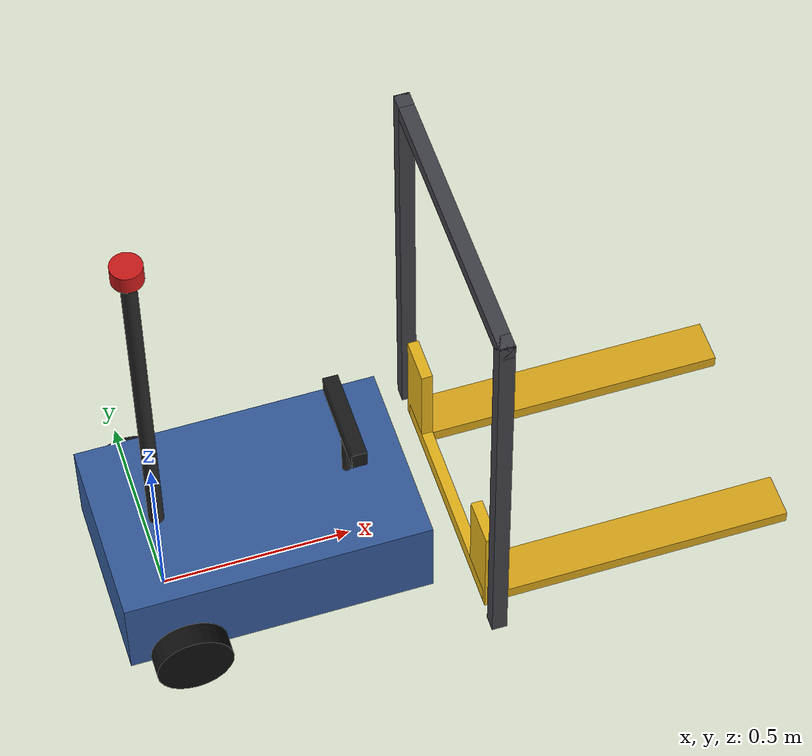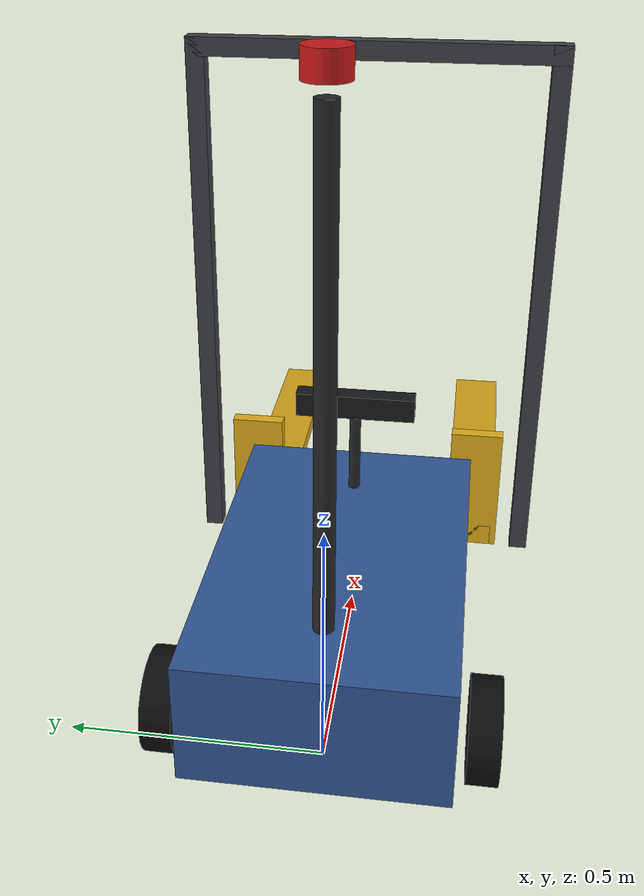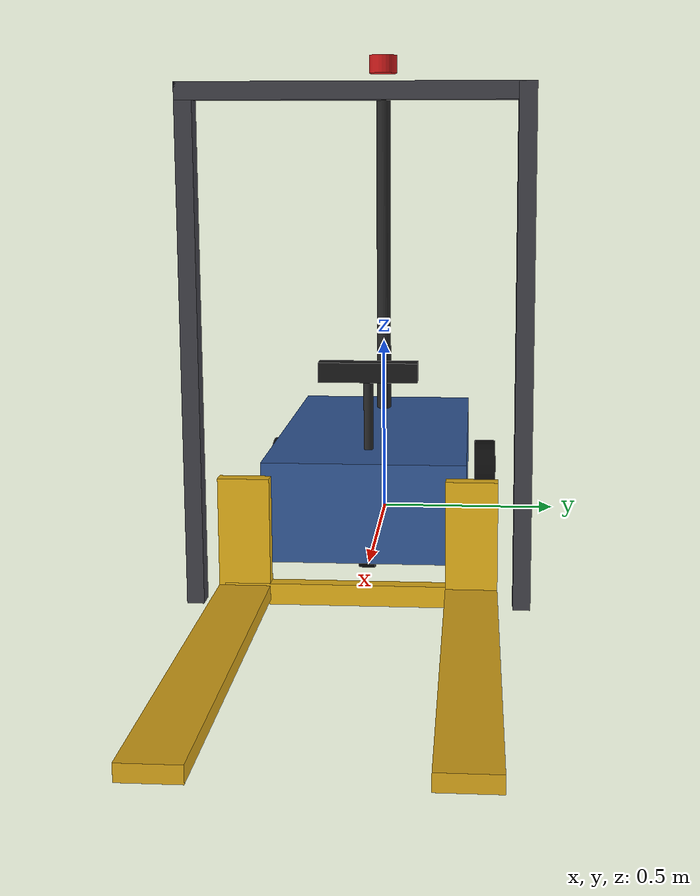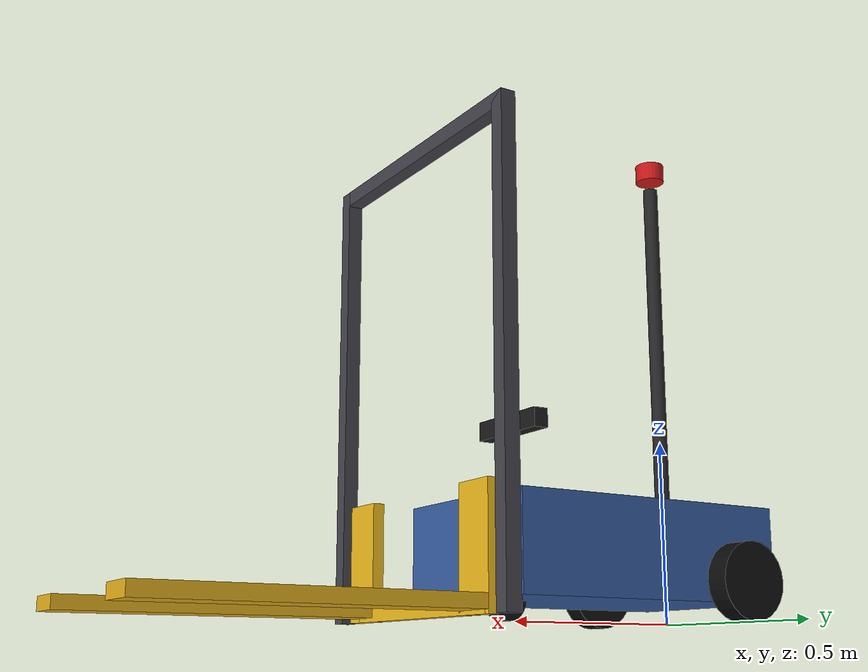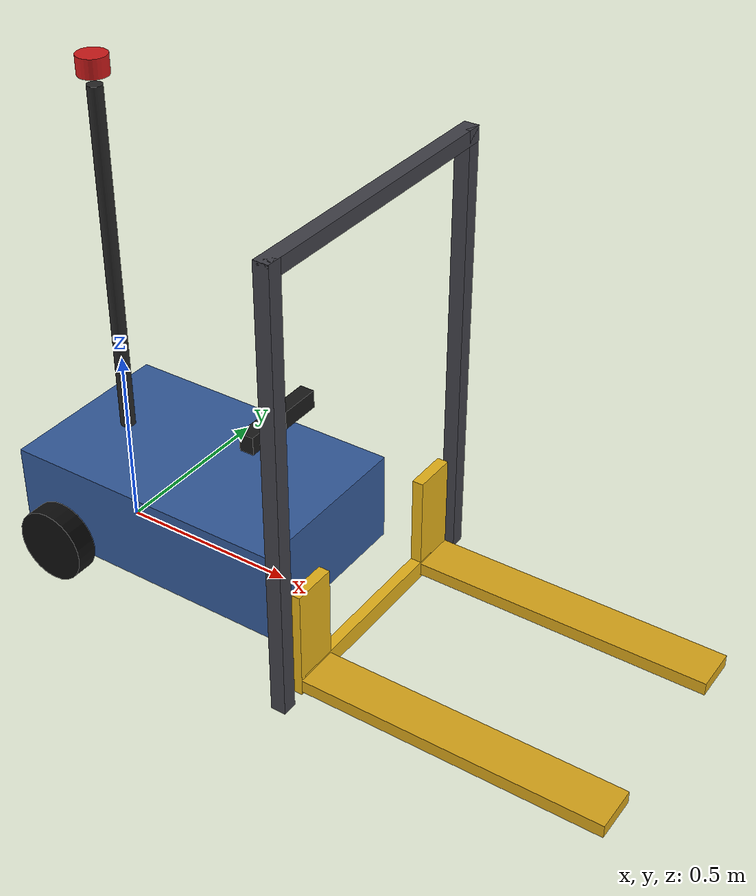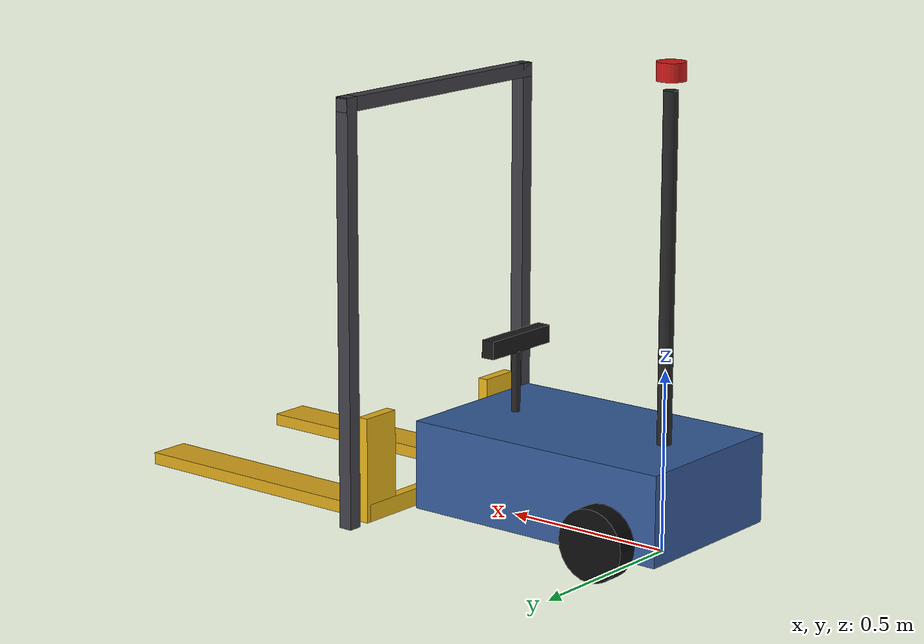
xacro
<?xml version="1.0"?>
<robot name="wafl" xmlns:xacro="http://www.ros.org/wiki/xacro">
  <xacro:include filename="$(find wafl_simulation)/urdf/wafl_gz_plugins.xacro"/>

  <link name="base_footprint"/>
  <joint name="base_footprint_joint" type="fixed">
    <parent link="base_footprint"/><child link="base_link"/>
    <origin xyz="0 0 0.1" rpy="0 0 0"/>
  </joint>

  <link name="base_link">
    <inertial><origin xyz="0.05 0 0.075" rpy="0 0 0"/><mass value="55"/><inertia ixx="1.43229" ixy="0" ixz="0" iyy="3.21979" iyz="0" izz="4.07917"/></inertial>
    <visual name="chassis"><origin xyz="0.25 0 0.075" rpy="0 0 0"/><geometry><box size="0.8 0.5 0.25"/></geometry><material name="chassis_m"><color rgba="0.2 0.35 0.6 1"/></material></visual>
    <collision><origin xyz="0.25 0 0.075" rpy="0 0 0"/><geometry><box size="0.8 0.5 0.25"/></geometry></collision>
    <visual name="mast_l"><origin xyz="0.78 0.38 0.5" rpy="0 0 0"/><geometry><box size="0.04 0.04 1.2"/></geometry><material name="mast_l_m"><color rgba="0.25 0.25 0.28 1"/></material></visual>
    <visual name="mast_r"><origin xyz="0.78 -0.38 0.5" rpy="0 0 0"/><geometry><box size="0.04 0.04 1.2"/></geometry><material name="mast_r_m"><color rgba="0.25 0.25 0.28 1"/></material></visual>
    <visual name="mast_top"><origin xyz="0.78 0 1.08" rpy="0 0 0"/><geometry><box size="0.04 0.8 0.04"/></geometry><material name="mast_top_m"><color rgba="0.25 0.25 0.28 1"/></material></visual>
    <visual name="lidar_pole"><origin xyz="0 0 0.675" rpy="0 0 0"/><geometry><cylinder radius="0.02" length="0.95"/></geometry><material name="lidar_pole_m"><color rgba="0.15 0.15 0.15 1"/></material></visual>
    <visual name="cam_pole"><origin xyz="0.5 0 0.3" rpy="0 0 0"/><geometry><cylinder radius="0.012" length="0.2"/></geometry><material name="cam_pole_m"><color rgba="0.15 0.15 0.15 1"/></material></visual>
  </link>

  <!-- Front-left steering knuckle + drive wheel -->
  <link name="front_left_steer_link">
    <inertial><origin xyz="0 0 0" rpy="0 0 0"/><mass value="0.5"/><inertia ixx="0.001" ixy="0" ixz="0" iyy="0.001" iyz="0" izz="0.001"/></inertial>
    <visual><origin xyz="0 0 0" rpy="0 0 0"/><geometry><cylinder radius="0.03" length="0.06"/></geometry><material name="steer_l_m"><color rgba="0.2 0.2 0.2 1"/></material></visual>
  </link>
  <joint name="front_left_steer_joint" type="revolute">
    <parent link="base_link"/><child link="front_left_steer_link"/>
    <origin xyz="0 0.3 0" rpy="0 0 0"/><axis xyz="0 0 1"/>
    <limit lower="-1.5708" upper="1.5708" effort="20" velocity="5"/>
    <dynamics damping="0.05" friction="0"/>
  </joint>

  <link name="front_left_wheel_link">
    <inertial><origin xyz="0 0 0" rpy="0 0 0"/><mass value="1.5"/><inertia ixx="0.0042" ixy="0" ixz="0" iyy="0.0075" iyz="0" izz="0.0042"/></inertial>
    <visual><origin xyz="0 0 0" rpy="1.5708 0 0"/><geometry><cylinder radius="0.1" length="0.06"/></geometry><material name="wheel_l_m"><color rgba="0.05 0.05 0.05 1"/></material></visual>
    <collision><origin xyz="0 0 0" rpy="1.5708 0 0"/><geometry><cylinder radius="0.1" length="0.06"/></geometry></collision>
  </link>
  <joint name="front_left_wheel_joint" type="continuous">
    <parent link="front_left_steer_link"/><child link="front_left_wheel_link"/>
    <origin xyz="0 0 0" rpy="0 0 0"/><axis xyz="0 1 0"/>
  </joint>

  <!-- Front-right steering knuckle + drive wheel -->
  <link name="front_right_steer_link">
    <inertial><origin xyz="0 0 0" rpy="0 0 0"/><mass value="0.5"/><inertia ixx="0.001" ixy="0" ixz="0" iyy="0.001" iyz="0" izz="0.001"/></inertial>
    <visual><origin xyz="0 0 0" rpy="0 0 0"/><geometry><cylinder radius="0.03" length="0.06"/></geometry><material name="steer_r_m"><color rgba="0.2 0.2 0.2 1"/></material></visual>
  </link>
  <joint name="front_right_steer_joint" type="revolute">
    <parent link="base_link"/><child link="front_right_steer_link"/>
    <origin xyz="0 -0.3 0" rpy="0 0 0"/><axis xyz="0 0 1"/>
    <limit lower="-1.5708" upper="1.5708" effort="20" velocity="5"/>
    <dynamics damping="0.05" friction="0"/>
  </joint>

  <link name="front_right_wheel_link">
    <inertial><origin xyz="0 0 0" rpy="0 0 0"/><mass value="1.5"/><inertia ixx="0.0042" ixy="0" ixz="0" iyy="0.0075" iyz="0" izz="0.0042"/></inertial>
    <visual><origin xyz="0 0 0" rpy="1.5708 0 0"/><geometry><cylinder radius="0.1" length="0.06"/></geometry><material name="wheel_r_m"><color rgba="0.05 0.05 0.05 1"/></material></visual>
    <collision><origin xyz="0 0 0" rpy="1.5708 0 0"/><geometry><cylinder radius="0.1" length="0.06"/></geometry></collision>
  </link>
  <joint name="front_right_wheel_joint" type="continuous">
    <parent link="front_right_steer_link"/><child link="front_right_wheel_link"/>
    <origin xyz="0 0 0" rpy="0 0 0"/><axis xyz="0 1 0"/>
  </joint>

  <!-- Rear caster: steering joint (stepper on hardware) + passive rolling wheel -->
  <link name="caster_link">
    <inertial><origin xyz="0 0 0" rpy="0 0 0"/><mass value="0.5"/><inertia ixx="0.001" ixy="0" ixz="0" iyy="0.001" iyz="0" izz="0.001"/></inertial>
    <visual><origin xyz="0 0 -0.025" rpy="0 0 0"/><geometry><cylinder radius="0.02" length="0.05"/></geometry><material name="caster_m"><color rgba="0.2 0.2 0.2 1"/></material></visual>
  </link>
  <joint name="caster_joint" type="revolute">
    <parent link="base_link"/><child link="caster_link"/>
    <origin xyz="0.5 0 0" rpy="0 0 0"/><axis xyz="0 0 1"/>
    <limit lower="-1.3963" upper="1.3963" effort="20" velocity="5"/>
    <dynamics damping="0.05" friction="0"/>
  </joint>

  <link name="caster_wheel_link">
    <inertial><origin xyz="0 0 0" rpy="0 0 0"/><mass value="0.5"/><inertia ixx="0.0005" ixy="0" ixz="0" iyy="0.0005" iyz="0" izz="0.0005"/></inertial>
    <visual><origin xyz="0 0 0" rpy="1.5708 0 0"/><geometry><cylinder radius="0.05" length="0.04"/></geometry><material name="caster_wheel_m"><color rgba="0.05 0.05 0.05 1"/></material></visual>
    <collision><origin xyz="0 0 0" rpy="1.5708 0 0"/><geometry><cylinder radius="0.05" length="0.04"/></geometry></collision>
  </link>
  <joint name="caster_wheel_joint" type="continuous">
    <parent link="caster_link"/><child link="caster_wheel_link"/>
    <origin xyz="0.03 0 -0.05" rpy="0 0 0"/><axis xyz="0 1 0"/>
  </joint>

  <link name="fork_carriage_link">
    <inertial><origin xyz="0.4 0 0.1" rpy="0 0 0"/><mass value="6"/><inertia ixx="0.2372" ixy="0" ixz="0" iyy="0.365" iyz="0" izz="0.5122"/></inertial>
    <visual name="plate_l"><origin xyz="0 0.26375 0.15" rpy="0 0 0"/><geometry><box size="0.03 0.12 0.3"/></geometry><material name="plate_l_m"><color rgba="0.9 0.7 0.1 1"/></material></visual>
    <visual name="fork_l"><origin xyz="0.415 0.26375 0.0275" rpy="0 0 0"/><geometry><box size="0.8 0.12 0.035"/></geometry><material name="fork_l_m"><color rgba="0.85 0.65 0.1 1"/></material></visual>
    <visual name="plate_r"><origin xyz="0 -0.26375 0.15" rpy="0 0 0"/><geometry><box size="0.03 0.12 0.3"/></geometry><material name="plate_r_m"><color rgba="0.9 0.7 0.1 1"/></material></visual>
    <visual name="fork_r"><origin xyz="0.415 -0.26375 0.0275" rpy="0 0 0"/><geometry><box size="0.8 0.12 0.035"/></geometry><material name="fork_r_m"><color rgba="0.85 0.65 0.1 1"/></material></visual>
    <visual name="crossbar"><origin xyz="0 0 0.025" rpy="0 0 0"/><geometry><box size="0.03 0.62 0.05"/></geometry><material name="crossbar_m"><color rgba="0.9 0.7 0.1 1"/></material></visual>
    <collision><origin xyz="0.415 0.26375 0.0275" rpy="0 0 0"/><geometry><box size="0.8 0.12 0.035"/></geometry></collision>
    <collision><origin xyz="0 0.26375 0.15" rpy="0 0 0"/><geometry><box size="0.03 0.12 0.3"/></geometry></collision>
    <collision><origin xyz="0.415 -0.26375 0.0275" rpy="0 0 0"/><geometry><box size="0.8 0.12 0.035"/></geometry></collision>
    <collision><origin xyz="0 -0.26375 0.15" rpy="0 0 0"/><geometry><box size="0.03 0.12 0.3"/></geometry></collision>
    <collision><origin xyz="0 0 0.025" rpy="0 0 0"/><geometry><box size="0.03 0.62 0.05"/></geometry></collision>
  </link>
  <joint name="fork_joint" type="prismatic">
    <parent link="base_link"/><child link="fork_carriage_link"/>
    <origin xyz="0.78 0 -0.1" rpy="0 0 0"/><axis xyz="0 0 1"/>
    <limit lower="0" upper="0.8" effort="1500" velocity="0.3"/>
    <dynamics damping="20" friction="0"/>
  </joint>

  <link name="laser_link">
    <inertial><origin xyz="0 0 0" rpy="0 0 0"/><mass value="0.2"/><inertia ixx="0.0002" ixy="0" ixz="0" iyy="0.0002" iyz="0" izz="0.0002"/></inertial>
    <visual><origin xyz="0 0 0" rpy="0 0 0"/><geometry><cylinder radius="0.04" length="0.05"/></geometry><material name="laser_m"><color rgba="0.8 0.1 0.1 1"/></material></visual>
  </link>
  <joint name="laser_joint" type="fixed">
    <parent link="base_link"/><child link="laser_link"/><origin xyz="0 0 1.2" rpy="0 0 0"/>
  </joint>

  <link name="camera_link">
    <inertial><origin xyz="0 0 0" rpy="0 0 0"/><mass value="0.2"/><inertia ixx="0.0002" ixy="0" ixz="0" iyy="0.0002" iyz="0" izz="0.0002"/></inertial>
    <visual><origin xyz="0 0 0" rpy="0 0 0"/><geometry><box size="0.04 0.25 0.05"/></geometry><material name="cam_m"><color rgba="0.1 0.1 0.1 1"/></material></visual>
  </link>
  <joint name="camera_joint" type="fixed">
    <parent link="base_link"/><child link="camera_link"/><origin xyz="0.5 0 0.4" rpy="0 0 0"/>
  </joint>

  <link name="imu_link">
    <inertial><origin xyz="0 0 0" rpy="0 0 0"/><mass value="0.05"/><inertia ixx="0.00001" ixy="0" ixz="0" iyy="0.00001" iyz="0" izz="0.00001"/></inertial>
  </link>
  <joint name="imu_joint" type="fixed">
    <parent link="base_link"/><child link="imu_link"/><origin xyz="0.1 0 0.05" rpy="0 0 0"/>
  </joint>

  <gazebo reference="front_left_wheel_link"><mu1>1.0</mu1><mu2>1.0</mu2></gazebo>
  <gazebo reference="front_right_wheel_link"><mu1>1.0</mu1><mu2>1.0</mu2></gazebo>
  <gazebo reference="caster_wheel_link"><mu1>0.01</mu1><mu2>0.01</mu2></gazebo>
  <gazebo reference="fork_carriage_link"><mu1>0.8</mu1><mu2>0.8</mu2></gazebo>
</robot>
